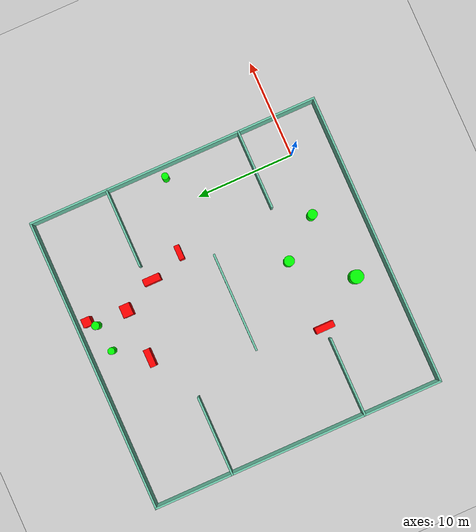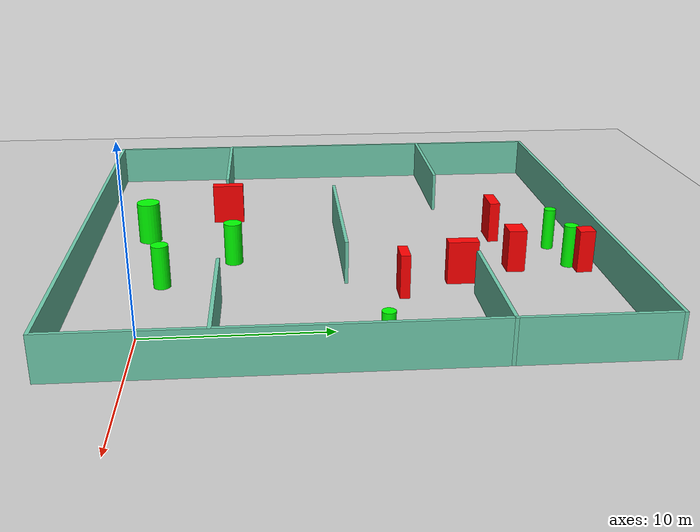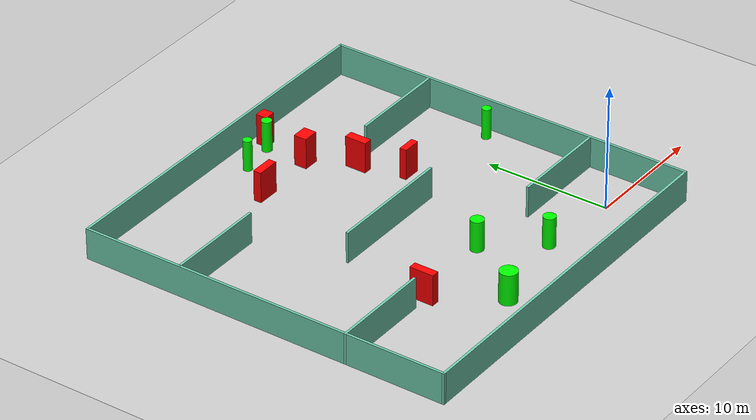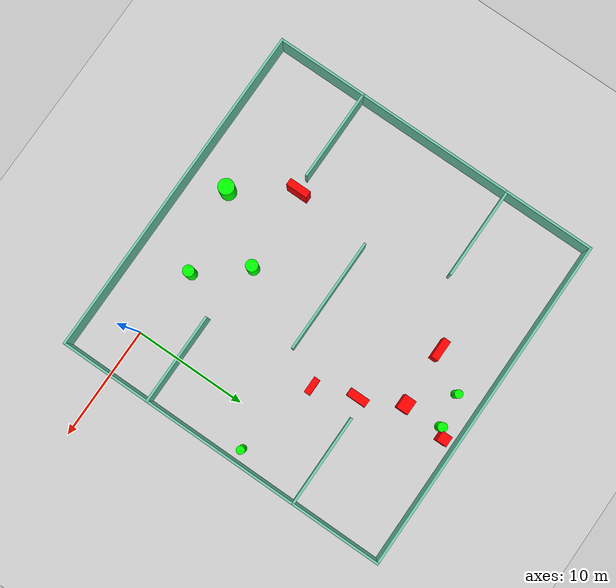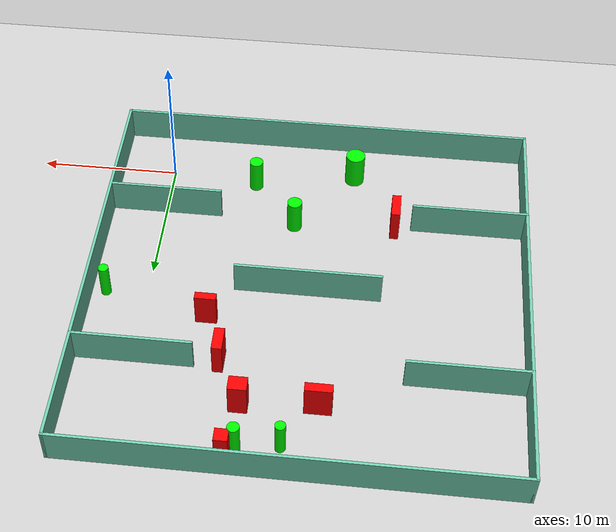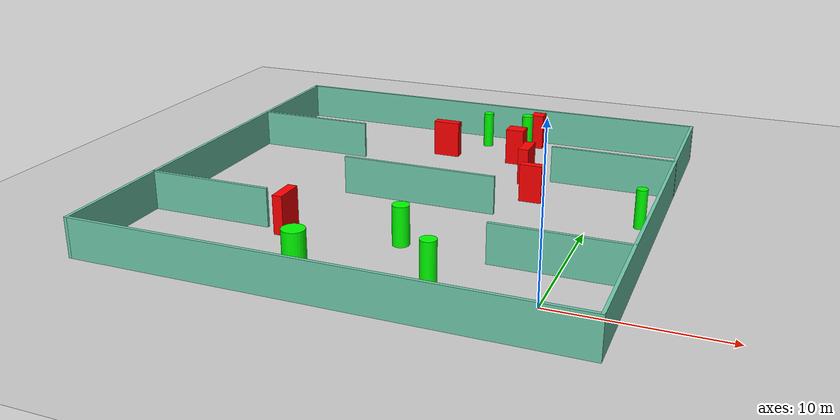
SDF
<sdf version="1.7">
 <world name="default">
  <light name="sun" type="directional">
   <pose>0 0 10 0 -0 0</pose>
   <diffuse>0.8 0.8 0.8 1</diffuse>
   <specular>0.2 0.2 0.2 1</specular>
   <attenuation>
    <range>1000</range>
    <constant>0.9</constant>
    <linear>0.01</linear>
    <quadratic>0.001</quadratic>
   </attenuation>
   <direction>-0.5 0.1 -0.9</direction>
   <spot><inner_angle>0</inner_angle><outer_angle>0</outer_angle><falloff>0</falloff></spot>
  </light>
  <model name="ground_plane">
   <static>1</static>
   <link name="link">
    <collision name="collision">
     <geometry><plane><normal>0 0 1</normal><size>100 100</size></plane></geometry>
     <surface>
      <contact><collide_bitmask>65535</collide_bitmask></contact>
      <friction><ode><mu>100</mu><mu2>50</mu2></ode></friction>
     </surface>
    </collision>
    <visual name="visual">
     <cast_shadows>0</cast_shadows>
     <geometry><plane><normal>0 0 1</normal><size>100 100</size></plane></geometry>
     <material>
      <script><uri>file://media/materials/scripts/gazebo.material</uri><name>Gazebo/Grey</name></script>
     </material>
    </visual>
   </link>
  </model>
  <gravity>0 0 -9.8</gravity>
  <magnetic_field>6e-06 2.3e-05 -4.2e-05</magnetic_field>
  <atmosphere type="adiabatic"/>
  <physics type="ode">
   <max_step_size>0.001</max_step_size>
   <real_time_factor>1</real_time_factor>
   <real_time_update_rate>1000</real_time_update_rate>
  </physics>
  <scene><ambient>0.4 0.4 0.4 1</ambient><background>0.7 0.7 0.7 1</background><shadows>1</shadows></scene>
  <spherical_coordinates>
   <surface_model>EARTH_WGS84</surface_model>
   <latitude_deg>0</latitude_deg>
   <longitude_deg>0</longitude_deg>
   <elevation>0</elevation>
   <heading_deg>0</heading_deg>
  </spherical_coordinates>
  <model name="my_base_walls">
   <link name="Wall_10">
    <collision name="Wall_10_Collision">
     <geometry><box><size>8.2 0.2 2.5</size></box></geometry>
     <pose>0 0 1.25 0 -0 0</pose>
    </collision>
    <visual name="Wall_10_Visual">
     <pose>0 0 1.25 0 -0 0</pose>
     <geometry><box><size>8.2 0.2 2.5</size></box></geometry>
     <material>
      <script><uri>file://media/materials/scripts/gazebo.material</uri><name>Gazebo/Grey</name></script>
      <ambient>0.435294 0.796078 0.67451 1</ambient>
     </material>
     <meta><layer>0</layer></meta>
    </visual>
    <pose>-11 -7 0 0 -0 0</pose>
   </link>
   <link name="Wall_12">
    <collision name="Wall_12_Collision">
     <geometry><box><size>8.2 0.2 2.5</size></box></geometry>
     <pose>0 0 1.25 0 -0 0</pose>
    </collision>
    <visual name="Wall_12_Visual">
     <pose>0 0 1.25 0 -0 0</pose>
     <geometry><box><size>8.2 0.2 2.5</size></box></geometry>
     <material>
      <script><uri>file://media/materials/scripts/gazebo.material</uri><name>Gazebo/Grey</name></script>
      <ambient>0.435294 0.796078 0.67451 1</ambient>
     </material>
     <meta><layer>0</layer></meta>
    </visual>
    <pose>-11 7 0 0 -0 0</pose>
   </link>
   <link name="Wall_14">
    <collision name="Wall_14_Collision">
     <geometry><box><size>8.2 0.2 2.5</size></box></geometry>
     <pose>0 0 1.25 0 -0 0</pose>
    </collision>
    <visual name="Wall_14_Visual">
     <pose>0 0 1.25 0 -0 0</pose>
     <geometry><box><size>8.2 0.2 2.5</size></box></geometry>
     <material>
      <script><uri>file://media/materials/scripts/gazebo.material</uri><name>Gazebo/Grey</name></script>
      <ambient>0.435294 0.796078 0.67451 1</ambient>
     </material>
     <meta><layer>0</layer></meta>
    </visual>
    <pose>11 7 0 0 -0 3.14159</pose>
   </link>
   <link name="Wall_16">
    <collision name="Wall_16_Collision">
     <geometry><box><size>10.2 0.2 2.5</size></box></geometry>
     <pose>0 0 1.25 0 -0 0</pose>
    </collision>
    <visual name="Wall_16_Visual">
     <pose>0 0 1.25 0 -0 0</pose>
     <geometry><box><size>10.2 0.2 2.5</size></box></geometry>
     <material>
      <script><uri>file://media/materials/scripts/gazebo.material</uri><name>Gazebo/Grey</name></script>
      <ambient>0.435294 0.796078 0.67451 1</ambient>
     </material>
     <meta><layer>0</layer></meta>
    </visual>
    <pose>0 0 0 0 -0 3.14159</pose>
   </link>
   <link name="Wall_2">
    <collision name="Wall_2_Collision">
     <geometry><box><size>30.2 0.2 2.5</size></box></geometry>
     <pose>0 0 1.25 0 -0 0</pose>
    </collision>
    <visual name="Wall_2_Visual">
     <pose>0 0 1.25 0 -0 0</pose>
     <geometry><box><size>30.2 0.2 2.5</size></box></geometry>
     <material>
      <script><uri>file://media/materials/scripts/gazebo.material</uri><name>Gazebo/Grey</name></script>
      <ambient>0.435294 0.796078 0.67451 1</ambient>
     </material>
     <meta><layer>0</layer></meta>
    </visual>
    <pose>0 -15 0 0 -0 3.14159</pose>
   </link>
   <link name="Wall_3">
    <collision name="Wall_3_Collision">
     <geometry><box><size>30.2 0.2 2.5</size></box></geometry>
     <pose>0 0 1.25 0 -0 0</pose>
    </collision>
    <visual name="Wall_3_Visual">
     <pose>0 0 1.25 0 -0 0</pose>
     <geometry><box><size>30.2 0.2 2.5</size></box></geometry>
     <material>
      <script><uri>file://media/materials/scripts/gazebo.material</uri><name>Gazebo/Grey</name></script>
      <ambient>0.435294 0.796078 0.67451 1</ambient>
     </material>
     <meta><layer>0</layer></meta>
    </visual>
    <pose>-15 0 0 0 -0 1.5708</pose>
   </link>
   <link name="Wall_4">
    <collision name="Wall_4_Collision">
     <geometry><box><size>30.2 0.2 2.5</size></box></geometry>
     <pose>0 0 1.25 0 -0 0</pose>
    </collision>
    <visual name="Wall_4_Visual">
     <pose>0 0 1.25 0 -0 0</pose>
     <geometry><box><size>30.2 0.2 2.5</size></box></geometry>
     <material>
      <script><uri>file://media/materials/scripts/gazebo.material</uri><name>Gazebo/Grey</name></script>
      <ambient>0.435294 0.796078 0.67451 1</ambient>
     </material>
     <meta><layer>0</layer></meta>
    </visual>
    <pose>0 15 0 0 -0 0</pose>
   </link>
   <link name="Wall_6">
    <collision name="Wall_6_Collision">
     <geometry><box><size>30.2 0.2 2.5</size></box></geometry>
     <pose>0 0 1.25 0 -0 0</pose>
    </collision>
    <visual name="Wall_6_Visual">
     <pose>0 0 1.25 0 -0 0</pose>
     <geometry><box><size>30.2 0.2 2.5</size></box></geometry>
     <material>
      <script><uri>file://media/materials/scripts/gazebo.material</uri><name>Gazebo/Grey</name></script>
      <ambient>0.435294 0.796078 0.67451 1</ambient>
     </material>
     <meta><layer>0</layer></meta>
    </visual>
    <pose>15 0 0 0 -0 1.5708</pose>
   </link>
   <link name="Wall_8">
    <collision name="Wall_8_Collision">
     <geometry><box><size>8.2 0.2 2.5</size></box></geometry>
     <pose>0 0 1.25 0 -0 0</pose>
    </collision>
    <visual name="Wall_8_Visual">
     <pose>0 0 1.25 0 -0 0</pose>
     <geometry><box><size>8.2 0.2 2.5</size></box></geometry>
     <material>
      <script><uri>file://media/materials/scripts/gazebo.material</uri><name>Gazebo/Grey</name></script>
      <ambient>0.435294 0.796078 0.67451 1</ambient>
     </material>
     <meta><layer>0</layer></meta>
    </visual>
    <pose>11 -7 0 0 -0 3.14159</pose>
   </link>
   <static>1</static>
   <pose>-11 11 0 0 -0 0</pose>
  </model>
  <model name="cylinder1">
   <static>1</static>
   <link name="link">
    <inertial>
     <mass>1</mass>
     <inertia><ixx>0.5</ixx><ixy>0</ixy><ixz>0</ixz><iyy>0.5</iyy><iyz>0</iyz><izz>1</izz></inertia>
    </inertial>
    <collision name="collision">
     <geometry><cylinder><radius>0.4887119994326814</radius><length>2.5</length></cylinder></geometry>
    </collision>
    <visual name="visual">
     <geometry><cylinder><radius>0.4887119994326814</radius><length>2.5</length></cylinder></geometry>
     <material>
      <ambient>0 1 0 1</ambient>
      <diffuse>0 1 0 1</diffuse>
      <specular>0.1 0.1 0.1 1</specular>
      <emissive>0 0 0 0</emissive>
     </material>
    </visual>
   </link>
   <pose>-6.264242443382525 0.7004175281733076 1.25 0 0 0</pose>
  </model>
  <model name="cylinder2">
   <static>1</static>
   <link name="link">
    <inertial>
     <mass>1</mass>
     <inertia><ixx>0.5</ixx><ixy>0</ixy><ixz>0</ixz><iyy>0.5</iyy><iyz>0</iyz><izz>1</izz></inertia>
    </inertial>
    <collision name="collision">
     <geometry><cylinder><radius>0.35157174453337625</radius><length>2.5</length></cylinder></geometry>
    </collision>
    <visual name="visual">
     <geometry><cylinder><radius>0.35157174453337625</radius><length>2.5</length></cylinder></geometry>
     <material>
      <ambient>0 1 0 1</ambient>
      <diffuse>0 1 0 1</diffuse>
      <specular>0.1 0.1 0.1 1</specular>
      <emissive>0 0 0 0</emissive>
     </material>
    </visual>
   </link>
   <pose>2.9160255883830075 12.242438655847137 1.25 0 0 0</pose>
  </model>
  <model name="cylinder3">
   <static>1</static>
   <link name="link">
    <inertial>
     <mass>1</mass>
     <inertia><ixx>0.5</ixx><ixy>0</ixy><ixz>0</ixz><iyy>0.5</iyy><iyz>0</iyz><izz>1</izz></inertia>
    </inertial>
    <collision name="collision">
     <geometry><cylinder><radius>0.402047351489798</radius><length>2.5</length></cylinder></geometry>
    </collision>
    <visual name="visual">
     <geometry><cylinder><radius>0.402047351489798</radius><length>2.5</length></cylinder></geometry>
     <material>
      <ambient>0 1 0 1</ambient>
      <diffuse>0 1 0 1</diffuse>
      <specular>0.1 0.1 0.1 1</specular>
      <emissive>0 0 0 0</emissive>
     </material>
    </visual>
   </link>
   <pose>-7.572421797193567 24.242883163237785 1.25 0 0 0</pose>
  </model>
  <model name="cylinder4">
   <static>1</static>
   <link name="link">
    <inertial>
     <mass>1</mass>
     <inertia><ixx>0.5</ixx><ixy>0</ixy><ixz>0</ixz><iyy>0.5</iyy><iyz>0</iyz><izz>1</izz></inertia>
    </inertial>
    <collision name="collision">
     <geometry><cylinder><radius>0.5254523271978455</radius><length>2.5</length></cylinder></geometry>
    </collision>
    <visual name="visual">
     <geometry><cylinder><radius>0.5254523271978455</radius><length>2.5</length></cylinder></geometry>
     <material>
      <ambient>0 1 0 1</ambient>
      <diffuse>0 1 0 1</diffuse>
      <specular>0.1 0.1 0.1 1</specular>
      <emissive>0 0 0 0</emissive>
     </material>
    </visual>
   </link>
   <pose>-9.480986236893088 4.599992445793093 1.25 0 0 0</pose>
  </model>
  <model name="cylinder5">
   <static>1</static>
   <link name="link">
    <inertial>
     <mass>1</mass>
     <inertia><ixx>0.5</ixx><ixy>0</ixy><ixz>0</ixz><iyy>0.5</iyy><iyz>0</iyz><izz>1</izz></inertia>
    </inertial>
    <collision name="collision">
     <geometry><cylinder><radius>0.3536051258008597</radius><length>2.5</length></cylinder></geometry>
    </collision>
    <visual name="visual">
     <geometry><cylinder><radius>0.3536051258008597</radius><length>2.5</length></cylinder></geometry>
     <material>
      <ambient>0 1 0 1</ambient>
      <diffuse>0 1 0 1</diffuse>
      <specular>0.1 0.1 0.1 1</specular>
      <emissive>0 0 0 0</emissive>
     </material>
    </visual>
   </link>
   <pose>-10.438291425339198 23.825518885500834 1.25 0 0 0</pose>
  </model>
  <model name="cylinder6">
   <static>1</static>
   <link name="link">
    <inertial>
     <mass>1</mass>
     <inertia><ixx>0.5</ixx><ixy>0</ixy><ixz>0</ixz><iyy>0.5</iyy><iyz>0</iyz><izz>1</izz></inertia>
    </inertial>
    <collision name="collision">
     <geometry><cylinder><radius>0.6932284565222729</radius><length>2.5</length></cylinder></geometry>
    </collision>
    <visual name="visual">
     <geometry><cylinder><radius>0.6932284565222729</radius><length>2.5</length></cylinder></geometry>
     <material>
      <ambient>0 1 0 1</ambient>
      <diffuse>0 1 0 1</diffuse>
      <specular>0.1 0.1 0.1 1</specular>
      <emissive>0 0 0 0</emissive>
     </material>
    </visual>
   </link>
   <pose>-13.517628236971595 -0.7524378902754969 1.25 0 0 0</pose>
  </model>
  <model name="box1">
   <static>1</static>
   <link name="link">
    <inertial>
     <mass>1</mass>
     <inertia><ixx>0.083</ixx><ixy>0</ixy><ixz>0</ixz><iyy>0.083</iyy><iyz>0</iyz><izz>0.083</izz></inertia>
    </inertial>
    <collision name="collision">
     <geometry><box><size>1.4644822593613163 0.5485015789008014 2.5</size></box></geometry>
    </collision>
    <visual name="visual">
     <geometry><box><size>1.4644822593613163 0.5485015789008014 2.5</size></box></geometry>
     <material>
      <ambient>1 0 0 1</ambient>
      <diffuse>1 0 0 1</diffuse>
      <specular>0.1 0.1 0.1 1</specular>
      <emissive>0 0 0 0</emissive>
     </material>
    </visual>
    <sensor name="my_contact" type="contact">
     <contact><collision>box_collision</collision><topic>__default_topic__</topic></contact>
    </sensor>
   </link>
   <pose>-4.371537717607641 13.993817431606494 1.25 0 0 0</pose>
  </model>
  <model name="box2">
   <static>1</static>
   <link name="link">
    <inertial>
     <mass>1</mass>
     <inertia><ixx>0.083</ixx><ixy>0</ixy><ixz>0</ixz><iyy>0.083</iyy><iyz>0</iyz><izz>0.083</izz></inertia>
    </inertial>
    <collision name="collision">
     <geometry><box><size>0.9034285682412048 0.9069733316071872 2.5</size></box></geometry>
    </collision>
    <visual name="visual">
     <geometry><box><size>0.9034285682412048 0.9069733316071872 2.5</size></box></geometry>
     <material>
      <ambient>1 0 0 1</ambient>
      <diffuse>1 0 0 1</diffuse>
      <specular>0.1 0.1 0.1 1</specular>
      <emissive>0 0 0 0</emissive>
     </material>
    </visual>
    <sensor name="my_contact" type="contact">
     <contact><collision>box_collision</collision><topic>__default_topic__</topic></contact>
    </sensor>
   </link>
   <pose>-6.907579824422871 24.8817270800425 1.25 0 0 0</pose>
  </model>
  <model name="box3">
   <static>1</static>
   <link name="link">
    <inertial>
     <mass>1</mass>
     <inertia><ixx>0.083</ixx><ixy>0</ixy><ixz>0</ixz><iyy>0.083</iyy><iyz>0</iyz><izz>0.083</izz></inertia>
    </inertial>
    <collision name="collision">
     <geometry><box><size>1.8306647675325611 0.6342439428906125 2.5</size></box></geometry>
    </collision>
    <visual name="visual">
     <geometry><box><size>1.8306647675325611 0.6342439428906125 2.5</size></box></geometry>
     <material>
      <ambient>1 0 0 1</ambient>
      <diffuse>1 0 0 1</diffuse>
      <specular>0.1 0.1 0.1 1</specular>
      <emissive>0 0 0 0</emissive>
     </material>
    </visual>
    <sensor name="my_contact" type="contact">
     <contact><collision>box_collision</collision><topic>__default_topic__</topic></contact>
    </sensor>
   </link>
   <pose>-12.555256290605854 20.71082445431871 1.25 0 0 0</pose>
  </model>
  <model name="box4">
   <static>1</static>
   <link name="link">
    <inertial>
     <mass>1</mass>
     <inertia><ixx>0.083</ixx><ixy>0</ixy><ixz>0</ixz><iyy>0.083</iyy><iyz>0</iyz><izz>0.083</izz></inertia>
    </inertial>
    <collision name="collision">
     <geometry><box><size>1.2486960850522042 1.042601682101687 2.5</size></box></geometry>
    </collision>
    <visual name="visual">
     <geometry><box><size>1.2486960850522042 1.042601682101687 2.5</size></box></geometry>
     <material>
      <ambient>1 0 0 1</ambient>
      <diffuse>1 0 0 1</diffuse>
      <specular>0.1 0.1 0.1 1</specular>
      <emissive>0 0 0 0</emissive>
     </material>
    </visual>
    <sensor name="my_contact" type="contact">
     <contact><collision>box_collision</collision><topic>__default_topic__</topic></contact>
    </sensor>
   </link>
   <pose>-7.424981138005917 20.92181744807046 1.25 0 0 0</pose>
  </model>
  <model name="box5">
   <static>1</static>
   <link name="link">
    <inertial>
     <mass>1</mass>
     <inertia><ixx>0.083</ixx><ixy>0</ixy><ixz>0</ixz><iyy>0.083</iyy><iyz>0</iyz><izz>0.083</izz></inertia>
    </inertial>
    <collision name="collision">
     <geometry><box><size>0.6301902501785376 1.9413170099660788 2.5</size></box></geometry>
    </collision>
    <visual name="visual">
     <geometry><box><size>0.6301902501785376 1.9413170099660788 2.5</size></box></geometry>
     <material>
      <ambient>1 0 0 1</ambient>
      <diffuse>1 0 0 1</diffuse>
      <specular>0.1 0.1 0.1 1</specular>
      <emissive>0 0 0 0</emissive>
     </material>
    </visual>
    <sensor name="my_contact" type="contact">
     <contact><collision>box_collision</collision><topic>__default_topic__</topic></contact>
    </sensor>
   </link>
   <pose>-16.730238052808723 4.073568022688086 1.25 0 0 0</pose>
  </model>
  <model name="box6">
   <static>1</static>
   <link name="link">
    <inertial>
     <mass>1</mass>
     <inertia><ixx>0.083</ixx><ixy>0</ixy><ixz>0</ixz><iyy>0.083</iyy><iyz>0</iyz><izz>0.083</izz></inertia>
    </inertial>
    <collision name="collision">
     <geometry><box><size>0.7014544508612788 1.7338453476514883 2.5</size></box></geometry>
    </collision>
    <visual name="visual">
     <geometry><box><size>0.7014544508612788 1.7338453476514883 2.5</size></box></geometry>
     <material>
      <ambient>1 0 0 1</ambient>
      <diffuse>1 0 0 1</diffuse>
      <specular>0.1 0.1 0.1 1</specular>
      <emissive>0 0 0 0</emissive>
     </material>
    </visual>
    <sensor name="my_contact" type="contact">
     <contact><collision>box_collision</collision><topic>__default_topic__</topic></contact>
    </sensor>
   </link>
   <pose>-5.708755583182917 17.487249803808485 1.25 0 0 0</pose>
  </model>
 </world>
</sdf>
